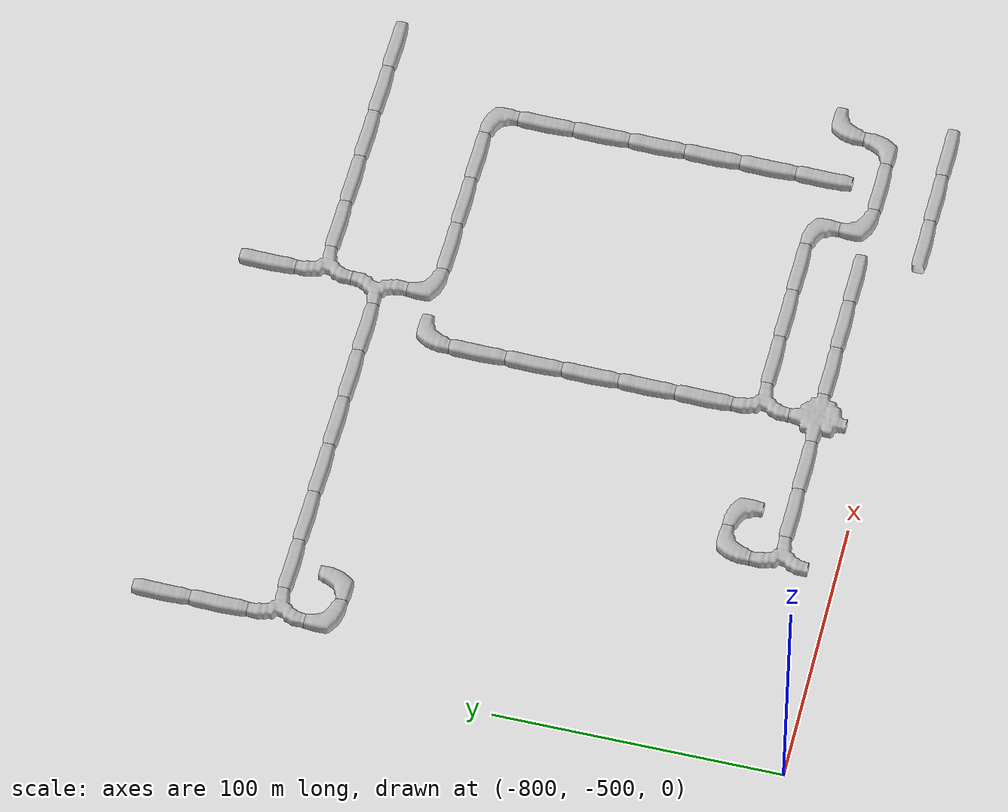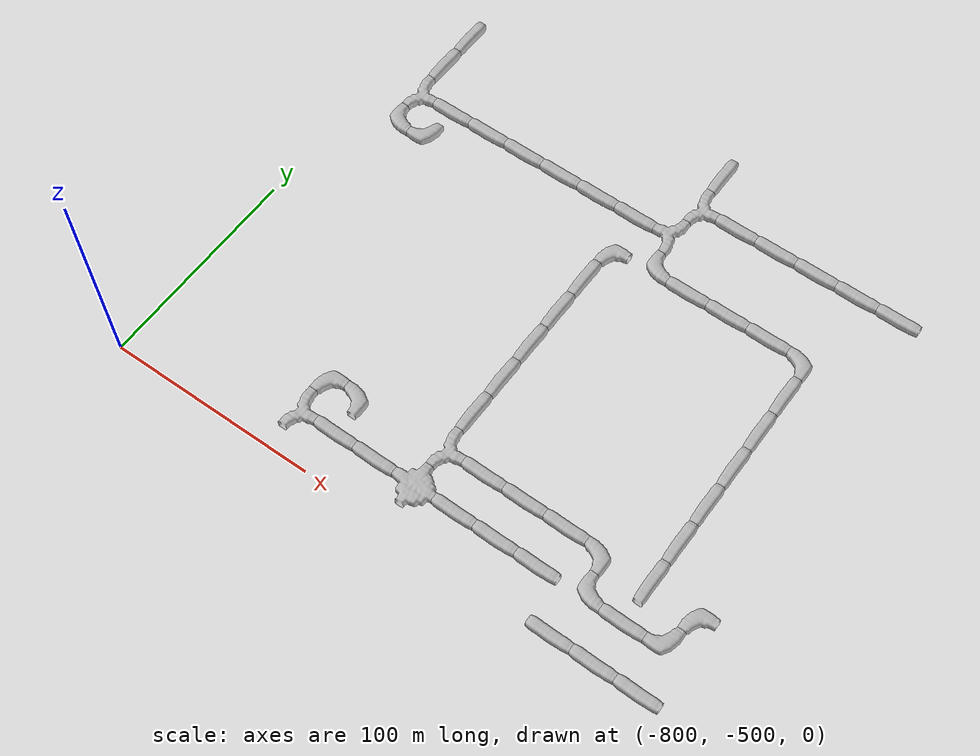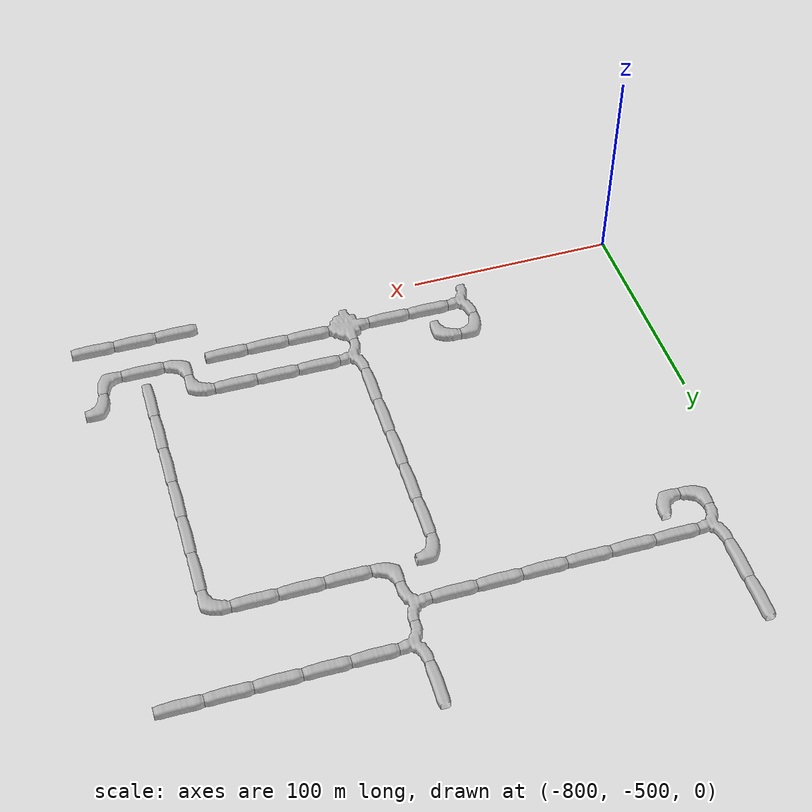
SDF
<sdf version="1.6">
 <world name="cave_32000_64">
  <include>
   <static>true</static>
   <name>cave_-27_-23</name>
   <pose>-540 -460 0 0 0 -1.5707963267948966</pose>
   <uri>model://cave_L_20m</uri>
  </include>
  <include>
   <static>true</static>
   <name>cave_-27_-24</name>
   <pose>-540 -480 0 0 0 1.5707963267948966</pose>
   <uri>model://cave_L_20m</uri>
  </include>
  <include>
   <static>true</static>
   <name>cave_-28_-24</name>
   <pose>-560 -480 0 0 0 1.5707963267948966</pose>
   <uri>model://cave_straight_20m</uri>
  </include>
  <include>
   <static>true</static>
   <name>cave_-29_-24</name>
   <pose>-580 -480 0 0 0 0.0</pose>
   <uri>model://cave_L_20m</uri>
  </include>
  <include>
   <static>true</static>
   <name>cave_-29_-23</name>
   <pose>-580 -460 0 0 0 3.141592653589793</pose>
   <uri>model://cave_L_20m</uri>
  </include>
  <include>
   <static>true</static>
   <name>cave_-30_-23</name>
   <pose>-600 -460 0 0 0 1.5707963267948966</pose>
   <uri>model://cave_straight_20m</uri>
  </include>
  <include>
   <static>true</static>
   <name>cave_-31_-23</name>
   <pose>-620 -460 0 0 0 1.5707963267948966</pose>
   <uri>model://cave_straight_20m</uri>
  </include>
  <include>
   <static>true</static>
   <name>cave_-32_-23</name>
   <pose>-640 -460 0 0 0 1.5707963267948966</pose>
   <uri>model://cave_straight_20m</uri>
  </include>
  <include>
   <static>true</static>
   <name>cave_-33_-23</name>
   <pose>-660 -460 0 0 0 -1.5707963267948966</pose>
   <uri>model://cave_3way_20m</uri>
  </include>
  <include>
   <static>true</static>
   <name>cave_-33_-24</name>
   <pose>-660 -480 0 0 0 -1.5707963267948966</pose>
   <uri>model://cave_4way_20m</uri>
  </include>
  <include>
   <static>true</static>
   <name>cave_-32_-24</name>
   <pose>-640 -480 0 0 0 1.5707963267948966</pose>
   <uri>model://cave_straight_20m</uri>
  </include>
  <include>
   <static>true</static>
   <name>cave_-31_-24</name>
   <pose>-620 -480 0 0 0 1.5707963267948966</pose>
   <uri>model://cave_straight_20m</uri>
  </include>
  <include>
   <static>true</static>
   <name>cave_-30_-24</name>
   <pose>-600 -480 0 0 0 1.5707963267948966</pose>
   <uri>model://cave_straight_20m</uri>
  </include>
  <include>
   <static>true</static>
   <name>cave_-29_-25</name>
   <pose>-580 -500 0 0 0 1.5707963267948966</pose>
   <uri>model://cave_straight_20m</uri>
  </include>
  <include>
   <static>true</static>
   <name>cave_-28_-25</name>
   <pose>-560 -500 0 0 0 1.5707963267948966</pose>
   <uri>model://cave_straight_20m</uri>
  </include>
  <include>
   <static>true</static>
   <name>cave_-27_-25</name>
   <pose>-540 -500 0 0 0 1.5707963267948966</pose>
   <uri>model://cave_straight_20m</uri>
  </include>
  <include>
   <static>true</static>
   <name>cave_-34_-24</name>
   <pose>-680 -480 0 0 0 1.5707963267948966</pose>
   <uri>model://cave_straight_20m</uri>
  </include>
  <include>
   <static>true</static>
   <name>cave_-35_-24</name>
   <pose>-700 -480 0 0 0 1.5707963267948966</pose>
   <uri>model://cave_straight_20m</uri>
  </include>
  <include>
   <static>true</static>
   <name>cave_-36_-24</name>
   <pose>-720 -480 0 0 0 -1.5707963267948966</pose>
   <uri>model://cave_3way_20m</uri>
  </include>
  <include>
   <static>true</static>
   <name>cave_-36_-23</name>
   <pose>-720 -460 0 0 0 -1.5707963267948966</pose>
   <uri>model://cave_L_20m</uri>
  </include>
  <include>
   <static>true</static>
   <name>cave_-35_-23</name>
   <pose>-700 -460 0 0 0 3.141592653589793</pose>
   <uri>model://cave_L_20m</uri>
  </include>
  <include>
   <static>true</static>
   <name>cave_-33_-22</name>
   <pose>-660 -440 0 0 0 0.0</pose>
   <uri>model://cave_straight_20m</uri>
  </include>
  <include>
   <static>true</static>
   <name>cave_-33_-21</name>
   <pose>-660 -420 0 0 0 0.0</pose>
   <uri>model://cave_straight_20m</uri>
  </include>
  <include>
   <static>true</static>
   <name>cave_-33_-20</name>
   <pose>-660 -400 0 0 0 0.0</pose>
   <uri>model://cave_straight_20m</uri>
  </include>
  <include>
   <static>true</static>
   <name>cave_-33_-19</name>
   <pose>-660 -380 0 0 0 0.0</pose>
   <uri>model://cave_straight_20m</uri>
  </include>
  <include>
   <static>true</static>
   <name>cave_-33_-18</name>
   <pose>-660 -360 0 0 0 0.0</pose>
   <uri>model://cave_straight_20m</uri>
  </include>
  <include>
   <static>true</static>
   <name>cave_-33_-17</name>
   <pose>-660 -340 0 0 0 -1.5707963267948966</pose>
   <uri>model://cave_L_20m</uri>
  </include>
  <include>
   <static>true</static>
   <name>cave_-32_-14</name>
   <pose>-640 -280 0 0 0 0.0</pose>
   <uri>model://cave_straight_20m</uri>
  </include>
  <include>
   <static>true</static>
   <name>cave_-32_-15</name>
   <pose>-640 -300 0 0 0 -1.5707963267948966</pose>
   <uri>model://cave_3way_20m</uri>
  </include>
  <include>
   <static>true</static>
   <name>cave_-31_-15</name>
   <pose>-620 -300 0 0 0 1.5707963267948966</pose>
   <uri>model://cave_straight_20m</uri>
  </include>
  <include>
   <static>true</static>
   <name>cave_-30_-15</name>
   <pose>-600 -300 0 0 0 1.5707963267948966</pose>
   <uri>model://cave_straight_20m</uri>
  </include>
  <include>
   <static>true</static>
   <name>cave_-29_-15</name>
   <pose>-580 -300 0 0 0 1.5707963267948966</pose>
   <uri>model://cave_straight_20m</uri>
  </include>
  <include>
   <static>true</static>
   <name>cave_-28_-15</name>
   <pose>-560 -300 0 0 0 1.5707963267948966</pose>
   <uri>model://cave_straight_20m</uri>
  </include>
  <include>
   <static>true</static>
   <name>cave_-27_-15</name>
   <pose>-540 -300 0 0 0 1.5707963267948966</pose>
   <uri>model://cave_straight_20m</uri>
  </include>
  <include>
   <static>true</static>
   <name>cave_-32_-16</name>
   <pose>-640 -320 0 0 0 1.5707963267948966</pose>
   <uri>model://cave_3way_20m</uri>
  </include>
  <include>
   <static>true</static>
   <name>cave_-32_-17</name>
   <pose>-640 -340 0 0 0 0.0</pose>
   <uri>model://cave_L_20m</uri>
  </include>
  <include>
   <static>true</static>
   <name>cave_-31_-17</name>
   <pose>-620 -340 0 0 0 1.5707963267948966</pose>
   <uri>model://cave_straight_20m</uri>
  </include>
  <include>
   <static>true</static>
   <name>cave_-30_-17</name>
   <pose>-600 -340 0 0 0 1.5707963267948966</pose>
   <uri>model://cave_straight_20m</uri>
  </include>
  <include>
   <static>true</static>
   <name>cave_-29_-17</name>
   <pose>-580 -340 0 0 0 1.5707963267948966</pose>
   <uri>model://cave_straight_20m</uri>
  </include>
  <include>
   <static>true</static>
   <name>cave_-28_-17</name>
   <pose>-560 -340 0 0 0 3.141592653589793</pose>
   <uri>model://cave_L_20m</uri>
  </include>
  <include>
   <static>true</static>
   <name>cave_-28_-18</name>
   <pose>-560 -360 0 0 0 0.0</pose>
   <uri>model://cave_straight_20m</uri>
  </include>
  <include>
   <static>true</static>
   <name>cave_-28_-19</name>
   <pose>-560 -380 0 0 0 0.0</pose>
   <uri>model://cave_straight_20m</uri>
  </include>
  <include>
   <static>true</static>
   <name>cave_-28_-20</name>
   <pose>-560 -400 0 0 0 0.0</pose>
   <uri>model://cave_straight_20m</uri>
  </include>
  <include>
   <static>true</static>
   <name>cave_-28_-21</name>
   <pose>-560 -420 0 0 0 0.0</pose>
   <uri>model://cave_straight_20m</uri>
  </include>
  <include>
   <static>true</static>
   <name>cave_-28_-22</name>
   <pose>-560 -440 0 0 0 0.0</pose>
   <uri>model://cave_straight_20m</uri>
  </include>
  <include>
   <static>true</static>
   <name>cave_-28_-23</name>
   <pose>-560 -460 0 0 0 0.0</pose>
   <uri>model://cave_straight_20m</uri>
  </include>
  <include>
   <static>true</static>
   <name>cave_-33_-16</name>
   <pose>-660 -320 0 0 0 1.5707963267948966</pose>
   <uri>model://cave_straight_20m</uri>
  </include>
  <include>
   <static>true</static>
   <name>cave_-34_-16</name>
   <pose>-680 -320 0 0 0 1.5707963267948966</pose>
   <uri>model://cave_straight_20m</uri>
  </include>
  <include>
   <static>true</static>
   <name>cave_-35_-16</name>
   <pose>-700 -320 0 0 0 1.5707963267948966</pose>
   <uri>model://cave_straight_20m</uri>
  </include>
  <include>
   <static>true</static>
   <name>cave_-36_-16</name>
   <pose>-720 -320 0 0 0 1.5707963267948966</pose>
   <uri>model://cave_straight_20m</uri>
  </include>
  <include>
   <static>true</static>
   <name>cave_-37_-16</name>
   <pose>-740 -320 0 0 0 1.5707963267948966</pose>
   <uri>model://cave_straight_20m</uri>
  </include>
  <include>
   <static>true</static>
   <name>cave_-38_-16</name>
   <pose>-760 -320 0 0 0 1.5707963267948966</pose>
   <uri>model://cave_straight_20m</uri>
  </include>
  <include>
   <static>true</static>
   <name>cave_-39_-16</name>
   <pose>-780 -320 0 0 0 -1.5707963267948966</pose>
   <uri>model://cave_3way_20m</uri>
  </include>
  <include>
   <static>true</static>
   <name>cave_-39_-17</name>
   <pose>-780 -340 0 0 0 0.0</pose>
   <uri>model://cave_L_20m</uri>
  </include>
  <include>
   <static>true</static>
   <name>cave_-38_-17</name>
   <pose>-760 -340 0 0 0 1.5707963267948966</pose>
   <uri>model://cave_L_20m</uri>
  </include>
  <include>
   <static>true</static>
   <name>cave_-39_-15</name>
   <pose>-780 -300 0 0 0 0.0</pose>
   <uri>model://cave_straight_20m</uri>
  </include>
  <include>
   <static>true</static>
   <name>cave_-39_-14</name>
   <pose>-780 -280 0 0 0 0.0</pose>
   <uri>model://cave_straight_20m</uri>
  </include>
 </world>
</sdf>
